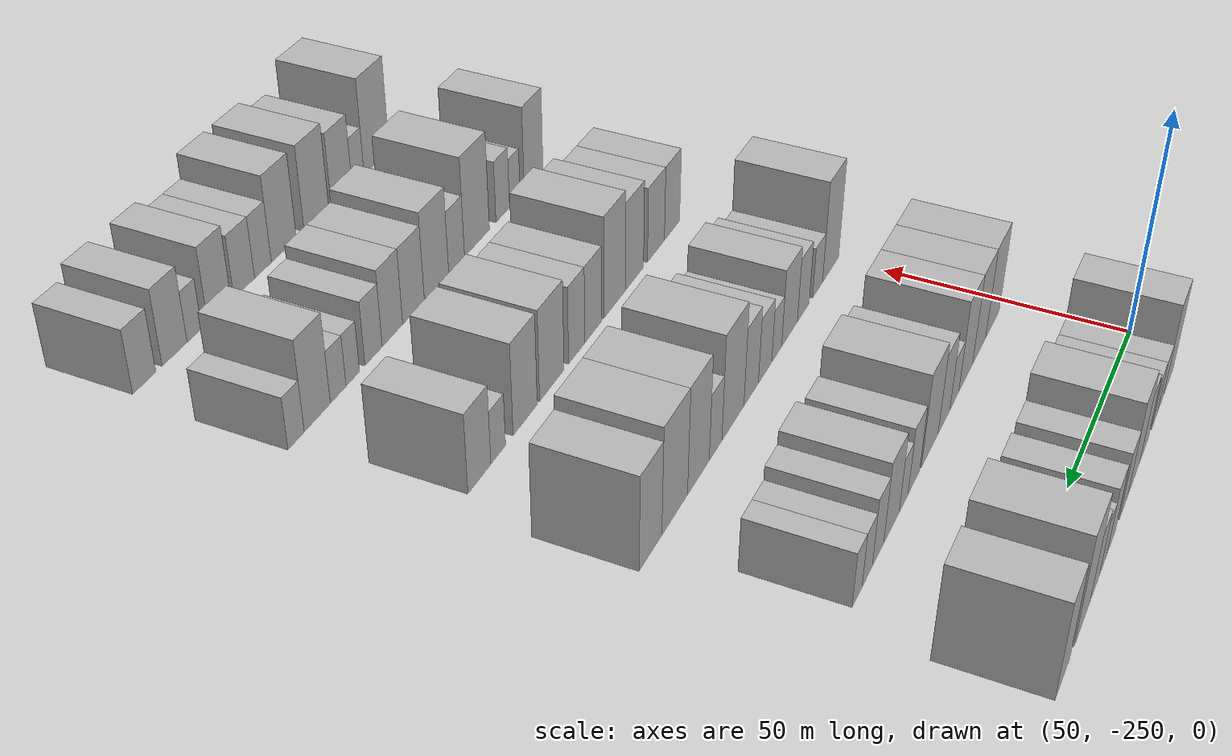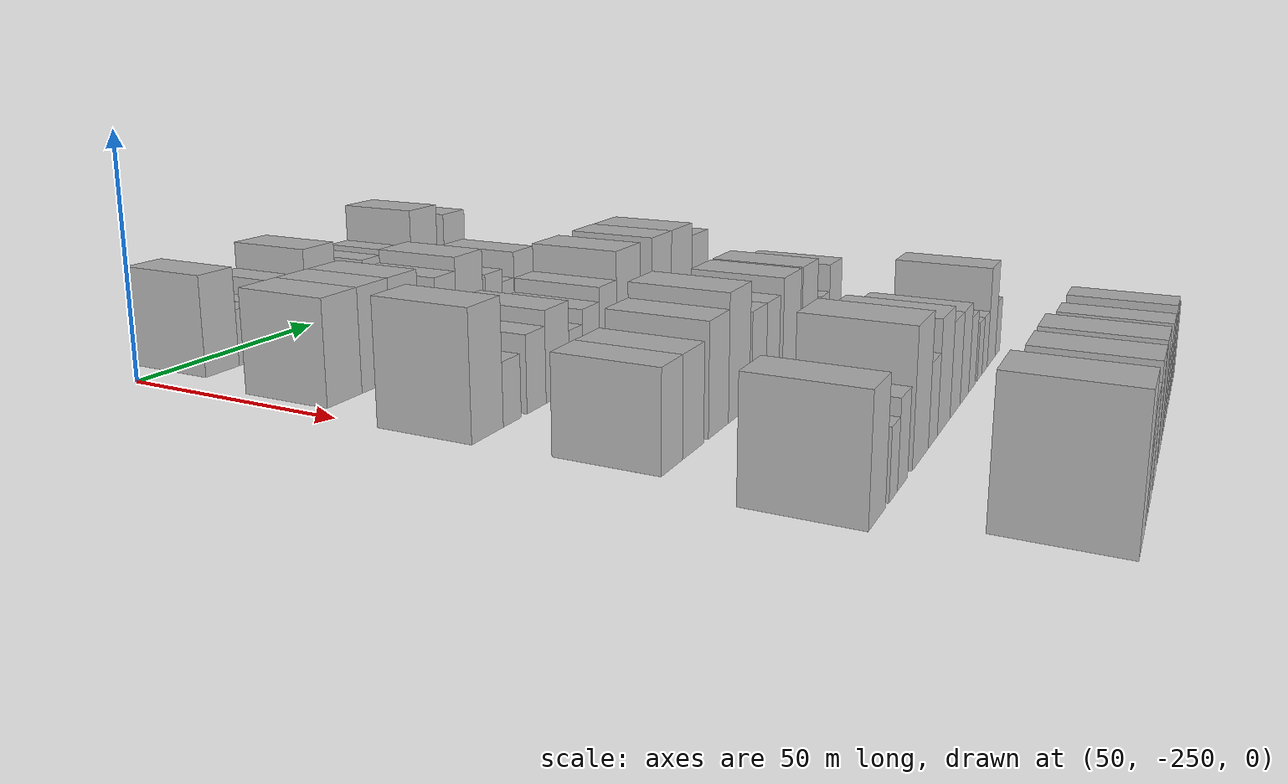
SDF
<sdf version="1.6">
 <world name="default">
  <model name="building_32">
   <static>1</static>
   <pose>50.0000 -237.3523 0 0.000000 0.000000 0.000000</pose>
   <link name="link">
    <pose>0 0 10.50 0 0 0</pose>
    <collision name="collision"><geometry><box><size>20.0000 9.0734 21.0000</size></box></geometry></collision>
    <visual name="visual">
     <cast_shadows>0</cast_shadows>
     <geometry><box><size>20.0000 9.0734 21.0000</size></box></geometry>
     <material>
      <script>
       <uri>model://HANNAS_wall/materials/scripts</uri>
       <uri>model://HANNAS_wall/materials/textures</uri>
       <name>vrc/HANNAS_wall</name>
      </script>
     </material>
    </visual>
   </link>
  </model>
  <model name="building_33">
   <static>1</static>
   <pose>50.0000 -230.0246 0 0.000000 0.000000 0.000000</pose>
   <link name="link">
    <pose>0 0 6.00 0 0 0</pose>
    <collision name="collision"><geometry><box><size>20.0000 5.5820 12.0000</size></box></geometry></collision>
    <visual name="visual">
     <cast_shadows>0</cast_shadows>
     <geometry><box><size>20.0000 5.5820 12.0000</size></box></geometry>
     <material>
      <script>
       <uri>model://HANNAS_wall/materials/scripts</uri>
       <uri>model://HANNAS_wall/materials/textures</uri>
       <name>vrc/HANNAS_wall</name>
      </script>
     </material>
    </visual>
   </link>
  </model>
  <model name="building_34">
   <static>1</static>
   <pose>50.0000 -224.6992 0 0.000000 0.000000 0.000000</pose>
   <link name="link">
    <pose>0 0 6.00 0 0 0</pose>
    <collision name="collision"><geometry><box><size>20.0000 5.0687 12.0000</size></box></geometry></collision>
    <visual name="visual">
     <cast_shadows>0</cast_shadows>
     <geometry><box><size>20.0000 5.0687 12.0000</size></box></geometry>
     <material>
      <script>
       <uri>model://HANNAS_wall/materials/scripts</uri>
       <uri>model://HANNAS_wall/materials/textures</uri>
       <name>vrc/HANNAS_wall</name>
      </script>
     </material>
    </visual>
   </link>
  </model>
  <model name="building_35">
   <static>1</static>
   <pose>50.0000 -215.6008 0 0.000000 0.000000 0.000000</pose>
   <link name="link">
    <pose>0 0 7.50 0 0 0</pose>
    <collision name="collision"><geometry><box><size>20.0000 7.1281 15.0000</size></box></geometry></collision>
    <visual name="visual">
     <cast_shadows>0</cast_shadows>
     <geometry><box><size>20.0000 7.1281 15.0000</size></box></geometry>
     <material>
      <script>
       <uri>model://HANNAS_wall/materials/scripts</uri>
       <uri>model://HANNAS_wall/materials/textures</uri>
       <name>vrc/HANNAS_wall</name>
      </script>
     </material>
    </visual>
   </link>
  </model>
  <model name="building_36">
   <static>1</static>
   <pose>50.0000 -207.0426 0 0.000000 0.000000 0.000000</pose>
   <link name="link">
    <pose>0 0 10.50 0 0 0</pose>
    <collision name="collision"><geometry><box><size>20.0000 9.9884 21.0000</size></box></geometry></collision>
    <visual name="visual">
     <cast_shadows>0</cast_shadows>
     <geometry><box><size>20.0000 9.9884 21.0000</size></box></geometry>
     <material>
      <script>
       <uri>model://HANNAS_wall/materials/scripts</uri>
       <uri>model://HANNAS_wall/materials/textures</uri>
       <name>vrc/HANNAS_wall</name>
      </script>
     </material>
    </visual>
   </link>
  </model>
  <model name="building_37">
   <static>1</static>
   <pose>50.0000 -198.7668 0 0.000000 0.000000 0.000000</pose>
   <link name="link">
    <pose>0 0 7.50 0 0 0</pose>
    <collision name="collision"><geometry><box><size>20.0000 6.5631 15.0000</size></box></geometry></collision>
    <visual name="visual">
     <cast_shadows>0</cast_shadows>
     <geometry><box><size>20.0000 6.5631 15.0000</size></box></geometry>
     <material>
      <script>
       <uri>model://HANNAS_wall/materials/scripts</uri>
       <uri>model://HANNAS_wall/materials/textures</uri>
       <name>vrc/HANNAS_wall</name>
      </script>
     </material>
    </visual>
   </link>
  </model>
  <model name="building_38">
   <static>1</static>
   <pose>50.0000 -189.1288 0 0.000000 0.000000 0.000000</pose>
   <link name="link">
    <pose>0 0 7.50 0 0 0</pose>
    <collision name="collision"><geometry><box><size>20.0000 6.7131 15.0000</size></box></geometry></collision>
    <visual name="visual">
     <cast_shadows>0</cast_shadows>
     <geometry><box><size>20.0000 6.7131 15.0000</size></box></geometry>
     <material>
      <script>
       <uri>model://HANNAS_wall/materials/scripts</uri>
       <uri>model://HANNAS_wall/materials/textures</uri>
       <name>vrc/HANNAS_wall</name>
      </script>
     </material>
    </visual>
   </link>
  </model>
  <model name="building_39">
   <static>1</static>
   <pose>50.0000 -183.0793 0 0.000000 0.000000 0.000000</pose>
   <link name="link">
    <pose>0 0 6.00 0 0 0</pose>
    <collision name="collision"><geometry><box><size>20.0000 5.3858 12.0000</size></box></geometry></collision>
    <visual name="visual">
     <cast_shadows>0</cast_shadows>
     <geometry><box><size>20.0000 5.3858 12.0000</size></box></geometry>
     <material>
      <script>
       <uri>model://HANNAS_wall/materials/scripts</uri>
       <uri>model://HANNAS_wall/materials/textures</uri>
       <name>vrc/HANNAS_wall</name>
      </script>
     </material>
    </visual>
   </link>
  </model>
  <model name="building_40">
   <static>1</static>
   <pose>50.0000 -177.0962 0 0.000000 0.000000 0.000000</pose>
   <link name="link">
    <pose>0 0 7.50 0 0 0</pose>
    <collision name="collision"><geometry><box><size>20.0000 6.5806 15.0000</size></box></geometry></collision>
    <visual name="visual">
     <cast_shadows>0</cast_shadows>
     <geometry><box><size>20.0000 6.5806 15.0000</size></box></geometry>
     <material>
      <script>
       <uri>model://HANNAS_wall/materials/scripts</uri>
       <uri>model://HANNAS_wall/materials/textures</uri>
       <name>vrc/HANNAS_wall</name>
      </script>
     </material>
    </visual>
   </link>
  </model>
  <model name="building_41">
   <static>1</static>
   <pose>50.0000 -168.3609 0 0.000000 0.000000 0.000000</pose>
   <link name="link">
    <pose>0 0 12.00 0 0 0</pose>
    <collision name="collision"><geometry><box><size>20.0000 10.8899 24.0000</size></box></geometry></collision>
    <visual name="visual">
     <cast_shadows>0</cast_shadows>
     <geometry><box><size>20.0000 10.8899 24.0000</size></box></geometry>
     <material>
      <script>
       <uri>model://HANNAS_wall/materials/scripts</uri>
       <uri>model://HANNAS_wall/materials/textures</uri>
       <name>vrc/HANNAS_wall</name>
      </script>
     </material>
    </visual>
   </link>
  </model>
  <model name="building_42">
   <static>1</static>
   <pose>50.0000 -155.2237 0 0.000000 0.000000 0.000000</pose>
   <link name="link">
    <pose>0 0 10.50 0 0 0</pose>
    <collision name="collision"><geometry><box><size>20.0000 9.3845 21.0000</size></box></geometry></collision>
    <visual name="visual">
     <cast_shadows>0</cast_shadows>
     <geometry><box><size>20.0000 9.3845 21.0000</size></box></geometry>
     <material>
      <script>
       <uri>model://HANNAS_wall/materials/scripts</uri>
       <uri>model://HANNAS_wall/materials/textures</uri>
       <name>vrc/HANNAS_wall</name>
      </script>
     </material>
    </visual>
   </link>
  </model>
  <model name="building_154">
   <static>1</static>
   <pose>85.0000 -241.3068 0 0.000000 0.000000 0.000000</pose>
   <link name="link">
    <pose>0 0 10.50 0 0 0</pose>
    <collision name="collision"><geometry><box><size>20.0000 9.9175 21.0000</size></box></geometry></collision>
    <visual name="visual">
     <cast_shadows>0</cast_shadows>
     <geometry><box><size>20.0000 9.9175 21.0000</size></box></geometry>
     <material>
      <script>
       <uri>model://HANNAS_wall/materials/scripts</uri>
       <uri>model://HANNAS_wall/materials/textures</uri>
       <name>vrc/HANNAS_wall</name>
      </script>
     </material>
    </visual>
   </link>
  </model>
  <model name="building_155">
   <static>1</static>
   <pose>85.0000 -231.7588 0 0.000000 0.000000 0.000000</pose>
   <link name="link">
    <pose>0 0 10.50 0 0 0</pose>
    <collision name="collision"><geometry><box><size>20.0000 9.1785 21.0000</size></box></geometry></collision>
    <visual name="visual">
     <cast_shadows>0</cast_shadows>
     <geometry><box><size>20.0000 9.1785 21.0000</size></box></geometry>
     <material>
      <script>
       <uri>model://HANNAS_wall/materials/scripts</uri>
       <uri>model://HANNAS_wall/materials/textures</uri>
       <name>vrc/HANNAS_wall</name>
      </script>
     </material>
    </visual>
   </link>
  </model>
  <model name="building_156">
   <static>1</static>
   <pose>85.0000 -222.5315 0 0.000000 0.000000 0.000000</pose>
   <link name="link">
    <pose>0 0 10.50 0 0 0</pose>
    <collision name="collision"><geometry><box><size>20.0000 9.2760 21.0000</size></box></geometry></collision>
    <visual name="visual">
     <cast_shadows>0</cast_shadows>
     <geometry><box><size>20.0000 9.2760 21.0000</size></box></geometry>
     <material>
      <script>
       <uri>model://HANNAS_wall/materials/scripts</uri>
       <uri>model://HANNAS_wall/materials/textures</uri>
       <name>vrc/HANNAS_wall</name>
      </script>
     </material>
    </visual>
   </link>
  </model>
  <model name="building_157">
   <static>1</static>
   <pose>85.0000 -214.9713 0 0.000000 0.000000 0.000000</pose>
   <link name="link">
    <pose>0 0 6.00 0 0 0</pose>
    <collision name="collision"><geometry><box><size>20.0000 5.8444 12.0000</size></box></geometry></collision>
    <visual name="visual">
     <cast_shadows>0</cast_shadows>
     <geometry><box><size>20.0000 5.8444 12.0000</size></box></geometry>
     <material>
      <script>
       <uri>model://HANNAS_wall/materials/scripts</uri>
       <uri>model://HANNAS_wall/materials/textures</uri>
       <name>vrc/HANNAS_wall</name>
      </script>
     </material>
    </visual>
   </link>
  </model>
  <model name="building_158">
   <static>1</static>
   <pose>85.0000 -208.3191 0 0.000000 0.000000 0.000000</pose>
   <link name="link">
    <pose>0 0 9.00 0 0 0</pose>
    <collision name="collision"><geometry><box><size>20.0000 7.4600 18.0000</size></box></geometry></collision>
    <visual name="visual">
     <cast_shadows>0</cast_shadows>
     <geometry><box><size>20.0000 7.4600 18.0000</size></box></geometry>
     <material>
      <script>
       <uri>model://HANNAS_wall/materials/scripts</uri>
       <uri>model://HANNAS_wall/materials/textures</uri>
       <name>vrc/HANNAS_wall</name>
      </script>
     </material>
    </visual>
   </link>
  </model>
  <model name="building_159">
   <static>1</static>
   <pose>85.0000 -199.4707 0 0.000000 0.000000 0.000000</pose>
   <link name="link">
    <pose>0 0 10.50 0 0 0</pose>
    <collision name="collision"><geometry><box><size>20.0000 10.2369 21.0000</size></box></geometry></collision>
    <visual name="visual">
     <cast_shadows>0</cast_shadows>
     <geometry><box><size>20.0000 10.2369 21.0000</size></box></geometry>
     <material>
      <script>
       <uri>model://HANNAS_wall/materials/scripts</uri>
       <uri>model://HANNAS_wall/materials/textures</uri>
       <name>vrc/HANNAS_wall</name>
      </script>
     </material>
    </visual>
   </link>
  </model>
  <model name="building_160">
   <static>1</static>
   <pose>85.0000 -189.9321 0 0.000000 0.000000 0.000000</pose>
   <link name="link">
    <pose>0 0 7.50 0 0 0</pose>
    <collision name="collision"><geometry><box><size>20.0000 6.8403 15.0000</size></box></geometry></collision>
    <visual name="visual">
     <cast_shadows>0</cast_shadows>
     <geometry><box><size>20.0000 6.8403 15.0000</size></box></geometry>
     <material>
      <script>
       <uri>model://HANNAS_wall/materials/scripts</uri>
       <uri>model://HANNAS_wall/materials/textures</uri>
       <name>vrc/HANNAS_wall</name>
      </script>
     </material>
    </visual>
   </link>
  </model>
  <model name="building_161">
   <static>1</static>
   <pose>85.0000 -184.0098 0 0.000000 0.000000 0.000000</pose>
   <link name="link">
    <pose>0 0 6.00 0 0 0</pose>
    <collision name="collision"><geometry><box><size>20.0000 5.0044 12.0000</size></box></geometry></collision>
    <visual name="visual">
     <cast_shadows>0</cast_shadows>
     <geometry><box><size>20.0000 5.0044 12.0000</size></box></geometry>
     <material>
      <script>
       <uri>model://HANNAS_wall/materials/scripts</uri>
       <uri>model://HANNAS_wall/materials/textures</uri>
       <name>vrc/HANNAS_wall</name>
      </script>
     </material>
    </visual>
   </link>
  </model>
  <model name="building_162">
   <static>1</static>
   <pose>85.0000 -177.2108 0 0.000000 0.000000 0.000000</pose>
   <link name="link">
    <pose>0 0 9.00 0 0 0</pose>
    <collision name="collision"><geometry><box><size>20.0000 8.5937 18.0000</size></box></geometry></collision>
    <visual name="visual">
     <cast_shadows>0</cast_shadows>
     <geometry><box><size>20.0000 8.5937 18.0000</size></box></geometry>
     <material>
      <script>
       <uri>model://HANNAS_wall/materials/scripts</uri>
       <uri>model://HANNAS_wall/materials/textures</uri>
       <name>vrc/HANNAS_wall</name>
      </script>
     </material>
    </visual>
   </link>
  </model>
  <model name="building_163">
   <static>1</static>
   <pose>85.0000 -169.8658 0 0.000000 0.000000 0.000000</pose>
   <link name="link">
    <pose>0 0 7.50 0 0 0</pose>
    <collision name="collision"><geometry><box><size>20.0000 6.0963 15.0000</size></box></geometry></collision>
    <visual name="visual">
     <cast_shadows>0</cast_shadows>
     <geometry><box><size>20.0000 6.0963 15.0000</size></box></geometry>
     <material>
      <script>
       <uri>model://HANNAS_wall/materials/scripts</uri>
       <uri>model://HANNAS_wall/materials/textures</uri>
       <name>vrc/HANNAS_wall</name>
      </script>
     </material>
    </visual>
   </link>
  </model>
  <model name="building_164">
   <static>1</static>
   <pose>85.0000 -164.1455 0 0.000000 0.000000 0.000000</pose>
   <link name="link">
    <pose>0 0 6.00 0 0 0</pose>
    <collision name="collision"><geometry><box><size>20.0000 5.3443 12.0000</size></box></geometry></collision>
    <visual name="visual">
     <cast_shadows>0</cast_shadows>
     <geometry><box><size>20.0000 5.3443 12.0000</size></box></geometry>
     <material>
      <script>
       <uri>model://HANNAS_wall/materials/scripts</uri>
       <uri>model://HANNAS_wall/materials/textures</uri>
       <name>vrc/HANNAS_wall</name>
      </script>
     </material>
    </visual>
   </link>
  </model>
  <model name="building_165">
   <static>1</static>
   <pose>85.0000 -158.9627 0 0.000000 0.000000 0.000000</pose>
   <link name="link">
    <pose>0 0 6.00 0 0 0</pose>
    <collision name="collision"><geometry><box><size>20.0000 5.0213 12.0000</size></box></geometry></collision>
    <visual name="visual">
     <cast_shadows>0</cast_shadows>
     <geometry><box><size>20.0000 5.0213 12.0000</size></box></geometry>
     <material>
      <script>
       <uri>model://HANNAS_wall/materials/scripts</uri>
       <uri>model://HANNAS_wall/materials/textures</uri>
       <name>vrc/HANNAS_wall</name>
      </script>
     </material>
    </visual>
   </link>
  </model>
  <model name="building_285">
   <static>1</static>
   <pose>120.0000 -245.6313 0 0.000000 0.000000 0.000000</pose>
   <link name="link">
    <pose>0 0 12.00 0 0 0</pose>
    <collision name="collision"><geometry><box><size>20.0000 9.8191 24.0000</size></box></geometry></collision>
    <visual name="visual">
     <cast_shadows>0</cast_shadows>
     <geometry><box><size>20.0000 9.8191 24.0000</size></box></geometry>
     <material>
      <script>
       <uri>model://HANNAS_wall/materials/scripts</uri>
       <uri>model://HANNAS_wall/materials/textures</uri>
       <name>vrc/HANNAS_wall</name>
      </script>
     </material>
    </visual>
   </link>
  </model>
  <model name="building_286">
   <static>1</static>
   <pose>120.0000 -237.7604 0 0.000000 0.000000 0.000000</pose>
   <link name="link">
    <pose>0 0 6.00 0 0 0</pose>
    <collision name="collision"><geometry><box><size>20.0000 5.9228 12.0000</size></box></geometry></collision>
    <visual name="visual">
     <cast_shadows>0</cast_shadows>
     <geometry><box><size>20.0000 5.9228 12.0000</size></box></geometry>
     <material>
      <script>
       <uri>model://HANNAS_wall/materials/scripts</uri>
       <uri>model://HANNAS_wall/materials/textures</uri>
       <name>vrc/HANNAS_wall</name>
      </script>
     </material>
    </visual>
   </link>
  </model>
  <model name="building_287">
   <static>1</static>
   <pose>120.0000 -229.4066 0 0.000000 0.000000 0.000000</pose>
   <link name="link">
    <pose>0 0 7.50 0 0 0</pose>
    <collision name="collision"><geometry><box><size>20.0000 6.7847 15.0000</size></box></geometry></collision>
    <visual name="visual">
     <cast_shadows>0</cast_shadows>
     <geometry><box><size>20.0000 6.7847 15.0000</size></box></geometry>
     <material>
      <script>
       <uri>model://HANNAS_wall/materials/scripts</uri>
       <uri>model://HANNAS_wall/materials/textures</uri>
       <name>vrc/HANNAS_wall</name>
      </script>
     </material>
    </visual>
   </link>
  </model>
  <model name="building_288">
   <static>1</static>
   <pose>120.0000 -221.6166 0 0.000000 0.000000 0.000000</pose>
   <link name="link">
    <pose>0 0 9.00 0 0 0</pose>
    <collision name="collision"><geometry><box><size>20.0000 8.7952 18.0000</size></box></geometry></collision>
    <visual name="visual">
     <cast_shadows>0</cast_shadows>
     <geometry><box><size>20.0000 8.7952 18.0000</size></box></geometry>
     <material>
      <script>
       <uri>model://HANNAS_wall/materials/scripts</uri>
       <uri>model://HANNAS_wall/materials/textures</uri>
       <name>vrc/HANNAS_wall</name>
      </script>
     </material>
    </visual>
   </link>
  </model>
  <model name="building_289">
   <static>1</static>
   <pose>120.0000 -214.5351 0 0.000000 0.000000 0.000000</pose>
   <link name="link">
    <pose>0 0 6.00 0 0 0</pose>
    <collision name="collision"><geometry><box><size>20.0000 5.3678 12.0000</size></box></geometry></collision>
    <visual name="visual">
     <cast_shadows>0</cast_shadows>
     <geometry><box><size>20.0000 5.3678 12.0000</size></box></geometry>
     <material>
      <script>
       <uri>model://HANNAS_wall/materials/scripts</uri>
       <uri>model://HANNAS_wall/materials/textures</uri>
       <name>vrc/HANNAS_wall</name>
      </script>
     </material>
    </visual>
   </link>
  </model>
  <model name="building_290">
   <static>1</static>
   <pose>120.0000 -208.3117 0 0.000000 0.000000 0.000000</pose>
   <link name="link">
    <pose>0 0 7.50 0 0 0</pose>
    <collision name="collision"><geometry><box><size>20.0000 7.0790 15.0000</size></box></geometry></collision>
    <visual name="visual">
     <cast_shadows>0</cast_shadows>
     <geometry><box><size>20.0000 7.0790 15.0000</size></box></geometry>
     <material>
      <script>
       <uri>model://HANNAS_wall/materials/scripts</uri>
       <uri>model://HANNAS_wall/materials/textures</uri>
       <name>vrc/HANNAS_wall</name>
      </script>
     </material>
    </visual>
   </link>
  </model>
  <model name="building_291">
   <static>1</static>
   <pose>120.0000 -201.0424 0 0.000000 0.000000 0.000000</pose>
   <link name="link">
    <pose>0 0 9.00 0 0 0</pose>
    <collision name="collision"><geometry><box><size>20.0000 7.4596 18.0000</size></box></geometry></collision>
    <visual name="visual">
     <cast_shadows>0</cast_shadows>
     <geometry><box><size>20.0000 7.4596 18.0000</size></box></geometry>
     <material>
      <script>
       <uri>model://HANNAS_wall/materials/scripts</uri>
       <uri>model://HANNAS_wall/materials/textures</uri>
       <name>vrc/HANNAS_wall</name>
      </script>
     </material>
    </visual>
   </link>
  </model>
  <model name="building_292">
   <static>1</static>
   <pose>120.0000 -191.8659 0 0.000000 0.000000 0.000000</pose>
   <link name="link">
    <pose>0 0 12.00 0 0 0</pose>
    <collision name="collision"><geometry><box><size>20.0000 10.8932 24.0000</size></box></geometry></collision>
    <visual name="visual">
     <cast_shadows>0</cast_shadows>
     <geometry><box><size>20.0000 10.8932 24.0000</size></box></geometry>
     <material>
      <script>
       <uri>model://HANNAS_wall/materials/scripts</uri>
       <uri>model://HANNAS_wall/materials/textures</uri>
       <name>vrc/HANNAS_wall</name>
      </script>
     </material>
    </visual>
   </link>
  </model>
  <model name="building_293">
   <static>1</static>
   <pose>120.0000 -183.3997 0 0.000000 0.000000 0.000000</pose>
   <link name="link">
    <pose>0 0 7.50 0 0 0</pose>
    <collision name="collision"><geometry><box><size>20.0000 6.0392 15.0000</size></box></geometry></collision>
    <visual name="visual">
     <cast_shadows>0</cast_shadows>
     <geometry><box><size>20.0000 6.0392 15.0000</size></box></geometry>
     <material>
      <script>
       <uri>model://HANNAS_wall/materials/scripts</uri>
       <uri>model://HANNAS_wall/materials/textures</uri>
       <name>vrc/HANNAS_wall</name>
      </script>
     </material>
    </visual>
   </link>
  </model>
  <model name="building_294">
   <static>1</static>
   <pose>120.0000 -175.3780 0 0.000000 0.000000 0.000000</pose>
   <link name="link">
    <pose>0 0 12.00 0 0 0</pose>
    <collision name="collision"><geometry><box><size>20.0000 10.0044 24.0000</size></box></geometry></collision>
    <visual name="visual">
     <cast_shadows>0</cast_shadows>
     <geometry><box><size>20.0000 10.0044 24.0000</size></box></geometry>
     <material>
      <script>
       <uri>model://HANNAS_wall/materials/scripts</uri>
       <uri>model://HANNAS_wall/materials/textures</uri>
       <name>vrc/HANNAS_wall</name>
      </script>
     </material>
    </visual>
   </link>
  </model>
  <model name="building_295">
   <static>1</static>
   <pose>120.0000 -164.7251 0 0.000000 0.000000 0.000000</pose>
   <link name="link">
    <pose>0 0 12.00 0 0 0</pose>
    <collision name="collision"><geometry><box><size>20.0000 11.3012 24.0000</size></box></geometry></collision>
    <visual name="visual">
     <cast_shadows>0</cast_shadows>
     <geometry><box><size>20.0000 11.3012 24.0000</size></box></geometry>
     <material>
      <script>
       <uri>model://HANNAS_wall/materials/scripts</uri>
       <uri>model://HANNAS_wall/materials/textures</uri>
       <name>vrc/HANNAS_wall</name>
      </script>
     </material>
    </visual>
   </link>
  </model>
  <model name="building_296">
   <static>1</static>
   <pose>120.0000 -154.3101 0 0.000000 0.000000 0.000000</pose>
   <link name="link">
    <pose>0 0 10.50 0 0 0</pose>
    <collision name="collision"><geometry><box><size>20.0000 9.5289 21.0000</size></box></geometry></collision>
    <visual name="visual">
     <cast_shadows>0</cast_shadows>
     <geometry><box><size>20.0000 9.5289 21.0000</size></box></geometry>
     <material>
      <script>
       <uri>model://HANNAS_wall/materials/scripts</uri>
       <uri>model://HANNAS_wall/materials/textures</uri>
       <name>vrc/HANNAS_wall</name>
      </script>
     </material>
    </visual>
   </link>
  </model>
  <model name="building_416">
   <static>1</static>
   <pose>155.0000 -245.2707 0 0.000000 0.000000 0.000000</pose>
   <link name="link">
    <pose>0 0 9.00 0 0 0</pose>
    <collision name="collision"><geometry><box><size>20.0000 8.0805 18.0000</size></box></geometry></collision>
    <visual name="visual">
     <cast_shadows>0</cast_shadows>
     <geometry><box><size>20.0000 8.0805 18.0000</size></box></geometry>
     <material>
      <script>
       <uri>model://HANNAS_wall/materials/scripts</uri>
       <uri>model://HANNAS_wall/materials/textures</uri>
       <name>vrc/HANNAS_wall</name>
      </script>
     </material>
    </visual>
   </link>
  </model>
  <model name="building_417">
   <static>1</static>
   <pose>155.0000 -236.8520 0 0.000000 0.000000 0.000000</pose>
   <link name="link">
    <pose>0 0 9.00 0 0 0</pose>
    <collision name="collision"><geometry><box><size>20.0000 8.7567 18.0000</size></box></geometry></collision>
    <visual name="visual">
     <cast_shadows>0</cast_shadows>
     <geometry><box><size>20.0000 8.7567 18.0000</size></box></geometry>
     <material>
      <script>
       <uri>model://HANNAS_wall/materials/scripts</uri>
       <uri>model://HANNAS_wall/materials/textures</uri>
       <name>vrc/HANNAS_wall</name>
      </script>
     </material>
    </visual>
   </link>
  </model>
  <model name="building_418">
   <static>1</static>
   <pose>155.0000 -225.9494 0 0.000000 0.000000 0.000000</pose>
   <link name="link">
    <pose>0 0 10.50 0 0 0</pose>
    <collision name="collision"><geometry><box><size>20.0000 9.0485 21.0000</size></box></geometry></collision>
    <visual name="visual">
     <cast_shadows>0</cast_shadows>
     <geometry><box><size>20.0000 9.0485 21.0000</size></box></geometry>
     <material>
      <script>
       <uri>model://HANNAS_wall/materials/scripts</uri>
       <uri>model://HANNAS_wall/materials/textures</uri>
       <name>vrc/HANNAS_wall</name>
      </script>
     </material>
    </visual>
   </link>
  </model>
  <model name="building_419">
   <static>1</static>
   <pose>155.0000 -216.3047 0 0.000000 0.000000 0.000000</pose>
   <link name="link">
    <pose>0 0 12.00 0 0 0</pose>
    <collision name="collision"><geometry><box><size>20.0000 10.2409 24.0000</size></box></geometry></collision>
    <visual name="visual">
     <cast_shadows>0</cast_shadows>
     <geometry><box><size>20.0000 10.2409 24.0000</size></box></geometry>
     <material>
      <script>
       <uri>model://HANNAS_wall/materials/scripts</uri>
       <uri>model://HANNAS_wall/materials/textures</uri>
       <name>vrc/HANNAS_wall</name>
      </script>
     </material>
    </visual>
   </link>
  </model>
  <model name="building_420">
   <static>1</static>
   <pose>155.0000 -206.3125 0 0.000000 0.000000 0.000000</pose>
   <link name="link">
    <pose>0 0 9.00 0 0 0</pose>
    <collision name="collision"><geometry><box><size>20.0000 7.7433 18.0000</size></box></geometry></collision>
    <visual name="visual">
     <cast_shadows>0</cast_shadows>
     <geometry><box><size>20.0000 7.7433 18.0000</size></box></geometry>
     <material>
      <script>
       <uri>model://HANNAS_wall/materials/scripts</uri>
       <uri>model://HANNAS_wall/materials/textures</uri>
       <name>vrc/HANNAS_wall</name>
      </script>
     </material>
    </visual>
   </link>
  </model>
  <model name="building_421">
   <static>1</static>
   <pose>155.0000 -198.8231 0 0.000000 0.000000 0.000000</pose>
   <link name="link">
    <pose>0 0 9.00 0 0 0</pose>
    <collision name="collision"><geometry><box><size>20.0000 7.2356 18.0000</size></box></geometry></collision>
    <visual name="visual">
     <cast_shadows>0</cast_shadows>
     <geometry><box><size>20.0000 7.2356 18.0000</size></box></geometry>
     <material>
      <script>
       <uri>model://HANNAS_wall/materials/scripts</uri>
       <uri>model://HANNAS_wall/materials/textures</uri>
       <name>vrc/HANNAS_wall</name>
      </script>
     </material>
    </visual>
   </link>
  </model>
  <model name="building_422">
   <static>1</static>
   <pose>155.0000 -187.9905 0 0.000000 0.000000 0.000000</pose>
   <link name="link">
    <pose>0 0 10.50 0 0 0</pose>
    <collision name="collision"><geometry><box><size>20.0000 10.4294 21.0000</size></box></geometry></collision>
    <visual name="visual">
     <cast_shadows>0</cast_shadows>
     <geometry><box><size>20.0000 10.4294 21.0000</size></box></geometry>
     <material>
      <script>
       <uri>model://HANNAS_wall/materials/scripts</uri>
       <uri>model://HANNAS_wall/materials/textures</uri>
       <name>vrc/HANNAS_wall</name>
      </script>
     </material>
    </visual>
   </link>
  </model>
  <model name="building_423">
   <static>1</static>
   <pose>155.0000 -176.8585 0 0.000000 0.000000 0.000000</pose>
   <link name="link">
    <pose>0 0 10.50 0 0 0</pose>
    <collision name="collision"><geometry><box><size>20.0000 9.8346 21.0000</size></box></geometry></collision>
    <visual name="visual">
     <cast_shadows>0</cast_shadows>
     <geometry><box><size>20.0000 9.8346 21.0000</size></box></geometry>
     <material>
      <script>
       <uri>model://HANNAS_wall/materials/scripts</uri>
       <uri>model://HANNAS_wall/materials/textures</uri>
       <name>vrc/HANNAS_wall</name>
      </script>
     </material>
    </visual>
   </link>
  </model>
  <model name="building_424">
   <static>1</static>
   <pose>155.0000 -166.0957 0 0.000000 0.000000 0.000000</pose>
   <link name="link">
    <pose>0 0 6.00 0 0 0</pose>
    <collision name="collision"><geometry><box><size>20.0000 5.6912 12.0000</size></box></geometry></collision>
    <visual name="visual">
     <cast_shadows>0</cast_shadows>
     <geometry><box><size>20.0000 5.6912 12.0000</size></box></geometry>
     <material>
      <script>
       <uri>model://HANNAS_wall/materials/scripts</uri>
       <uri>model://HANNAS_wall/materials/textures</uri>
       <name>vrc/HANNAS_wall</name>
      </script>
     </material>
    </visual>
   </link>
  </model>
  <model name="building_425">
   <static>1</static>
   <pose>155.0000 -158.9110 0 0.000000 0.000000 0.000000</pose>
   <link name="link">
    <pose>0 0 9.00 0 0 0</pose>
    <collision name="collision"><geometry><box><size>20.0000 8.6781 18.0000</size></box></geometry></collision>
    <visual name="visual">
     <cast_shadows>0</cast_shadows>
     <geometry><box><size>20.0000 8.6781 18.0000</size></box></geometry>
     <material>
      <script>
       <uri>model://HANNAS_wall/materials/scripts</uri>
       <uri>model://HANNAS_wall/materials/textures</uri>
       <name>vrc/HANNAS_wall</name>
      </script>
     </material>
    </visual>
   </link>
  </model>
  <model name="building_545">
   <static>1</static>
   <pose>190.0000 -250.3718 0 0.000000 0.000000 0.000000</pose>
   <link name="link">
    <pose>0 0 10.50 0 0 0</pose>
    <collision name="collision"><geometry><box><size>20.0000 9.1140 21.0000</size></box></geometry></collision>
    <visual name="visual">
     <cast_shadows>0</cast_shadows>
     <geometry><box><size>20.0000 9.1140 21.0000</size></box></geometry>
     <material>
      <script>
       <uri>model://HANNAS_wall/materials/scripts</uri>
       <uri>model://HANNAS_wall/materials/textures</uri>
       <name>vrc/HANNAS_wall</name>
      </script>
     </material>
    </visual>
   </link>
  </model>
  <model name="building_546">
   <static>1</static>
   <pose>190.0000 -241.3300 0 0.000000 0.000000 0.000000</pose>
   <link name="link">
    <pose>0 0 6.00 0 0 0</pose>
    <collision name="collision"><geometry><box><size>20.0000 4.9695 12.0000</size></box></geometry></collision>
    <visual name="visual">
     <cast_shadows>0</cast_shadows>
     <geometry><box><size>20.0000 4.9695 12.0000</size></box></geometry>
     <material>
      <script>
       <uri>model://HANNAS_wall/materials/scripts</uri>
       <uri>model://HANNAS_wall/materials/textures</uri>
       <name>vrc/HANNAS_wall</name>
      </script>
     </material>
    </visual>
   </link>
  </model>
  <model name="building_547">
   <static>1</static>
   <pose>190.0000 -235.7034 0 0.000000 0.000000 0.000000</pose>
   <link name="link">
    <pose>0 0 7.50 0 0 0</pose>
    <collision name="collision"><geometry><box><size>20.0000 6.2839 15.0000</size></box></geometry></collision>
    <visual name="visual">
     <cast_shadows>0</cast_shadows>
     <geometry><box><size>20.0000 6.2839 15.0000</size></box></geometry>
     <material>
      <script>
       <uri>model://HANNAS_wall/materials/scripts</uri>
       <uri>model://HANNAS_wall/materials/textures</uri>
       <name>vrc/HANNAS_wall</name>
      </script>
     </material>
    </visual>
   </link>
  </model>
  <model name="building_548">
   <static>1</static>
   <pose>190.0000 -224.0557 0 0.000000 0.000000 0.000000</pose>
   <link name="link">
    <pose>0 0 12.00 0 0 0</pose>
    <collision name="collision"><geometry><box><size>20.0000 11.0115 24.0000</size></box></geometry></collision>
    <visual name="visual">
     <cast_shadows>0</cast_shadows>
     <geometry><box><size>20.0000 11.0115 24.0000</size></box></geometry>
     <material>
      <script>
       <uri>model://HANNAS_wall/materials/scripts</uri>
       <uri>model://HANNAS_wall/materials/textures</uri>
       <name>vrc/HANNAS_wall</name>
      </script>
     </material>
    </visual>
   </link>
  </model>
  <model name="building_549">
   <static>1</static>
   <pose>190.0000 -215.1727 0 0.000000 0.000000 0.000000</pose>
   <link name="link">
    <pose>0 0 7.50 0 0 0</pose>
    <collision name="collision"><geometry><box><size>20.0000 6.7544 15.0000</size></box></geometry></collision>
    <visual name="visual">
     <cast_shadows>0</cast_shadows>
     <geometry><box><size>20.0000 6.7544 15.0000</size></box></geometry>
     <material>
      <script>
       <uri>model://HANNAS_wall/materials/scripts</uri>
       <uri>model://HANNAS_wall/materials/textures</uri>
       <name>vrc/HANNAS_wall</name>
      </script>
     </material>
    </visual>
   </link>
  </model>
  <model name="building_550">
   <static>1</static>
   <pose>190.0000 -206.7307 0 0.000000 0.000000 0.000000</pose>
   <link name="link">
    <pose>0 0 10.50 0 0 0</pose>
    <collision name="collision"><geometry><box><size>20.0000 10.1298 21.0000</size></box></geometry></collision>
    <visual name="visual">
     <cast_shadows>0</cast_shadows>
     <geometry><box><size>20.0000 10.1298 21.0000</size></box></geometry>
     <material>
      <script>
       <uri>model://HANNAS_wall/materials/scripts</uri>
       <uri>model://HANNAS_wall/materials/textures</uri>
       <name>vrc/HANNAS_wall</name>
      </script>
     </material>
    </visual>
   </link>
  </model>
  <model name="building_551">
   <static>1</static>
   <pose>190.0000 -197.3172 0 0.000000 0.000000 0.000000</pose>
   <link name="link">
    <pose>0 0 9.00 0 0 0</pose>
    <collision name="collision"><geometry><box><size>20.0000 8.6971 18.0000</size></box></geometry></collision>
    <visual name="visual">
     <cast_shadows>0</cast_shadows>
     <geometry><box><size>20.0000 8.6971 18.0000</size></box></geometry>
     <material>
      <script>
       <uri>model://HANNAS_wall/materials/scripts</uri>
       <uri>model://HANNAS_wall/materials/textures</uri>
       <name>vrc/HANNAS_wall</name>
      </script>
     </material>
    </visual>
   </link>
  </model>
  <model name="building_552">
   <static>1</static>
   <pose>190.0000 -189.0048 0 0.000000 0.000000 0.000000</pose>
   <link name="link">
    <pose>0 0 9.00 0 0 0</pose>
    <collision name="collision"><geometry><box><size>20.0000 7.9277 18.0000</size></box></geometry></collision>
    <visual name="visual">
     <cast_shadows>0</cast_shadows>
     <geometry><box><size>20.0000 7.9277 18.0000</size></box></geometry>
     <material>
      <script>
       <uri>model://HANNAS_wall/materials/scripts</uri>
       <uri>model://HANNAS_wall/materials/textures</uri>
       <name>vrc/HANNAS_wall</name>
      </script>
     </material>
    </visual>
   </link>
  </model>
  <model name="building_553">
   <static>1</static>
   <pose>190.0000 -181.7842 0 0.000000 0.000000 0.000000</pose>
   <link name="link">
    <pose>0 0 7.50 0 0 0</pose>
    <collision name="collision"><geometry><box><size>20.0000 6.5133 15.0000</size></box></geometry></collision>
    <visual name="visual">
     <cast_shadows>0</cast_shadows>
     <geometry><box><size>20.0000 6.5133 15.0000</size></box></geometry>
     <material>
      <script>
       <uri>model://HANNAS_wall/materials/scripts</uri>
       <uri>model://HANNAS_wall/materials/textures</uri>
       <name>vrc/HANNAS_wall</name>
      </script>
     </material>
    </visual>
   </link>
  </model>
  <model name="building_554">
   <static>1</static>
   <pose>190.0000 -174.0707 0 0.000000 0.000000 0.000000</pose>
   <link name="link">
    <pose>0 0 6.00 0 0 0</pose>
    <collision name="collision"><geometry><box><size>20.0000 4.9137 12.0000</size></box></geometry></collision>
    <visual name="visual">
     <cast_shadows>0</cast_shadows>
     <geometry><box><size>20.0000 4.9137 12.0000</size></box></geometry>
     <material>
      <script>
       <uri>model://HANNAS_wall/materials/scripts</uri>
       <uri>model://HANNAS_wall/materials/textures</uri>
       <name>vrc/HANNAS_wall</name>
      </script>
     </material>
    </visual>
   </link>
  </model>
  <model name="building_555">
   <static>1</static>
   <pose>190.0000 -168.8086 0 0.000000 0.000000 0.000000</pose>
   <link name="link">
    <pose>0 0 6.00 0 0 0</pose>
    <collision name="collision"><geometry><box><size>20.0000 5.6104 12.0000</size></box></geometry></collision>
    <visual name="visual">
     <cast_shadows>0</cast_shadows>
     <geometry><box><size>20.0000 5.6104 12.0000</size></box></geometry>
     <material>
      <script>
       <uri>model://HANNAS_wall/materials/scripts</uri>
       <uri>model://HANNAS_wall/materials/textures</uri>
       <name>vrc/HANNAS_wall</name>
      </script>
     </material>
    </visual>
   </link>
  </model>
  <model name="building_556">
   <static>1</static>
   <pose>190.0000 -161.4756 0 0.000000 0.000000 0.000000</pose>
   <link name="link">
    <pose>0 0 10.50 0 0 0</pose>
    <collision name="collision"><geometry><box><size>20.0000 9.0556 21.0000</size></box></geometry></collision>
    <visual name="visual">
     <cast_shadows>0</cast_shadows>
     <geometry><box><size>20.0000 9.0556 21.0000</size></box></geometry>
     <material>
      <script>
       <uri>model://HANNAS_wall/materials/scripts</uri>
       <uri>model://HANNAS_wall/materials/textures</uri>
       <name>vrc/HANNAS_wall</name>
      </script>
     </material>
    </visual>
   </link>
  </model>
  <model name="building_557">
   <static>1</static>
   <pose>190.0000 -154.2163 0 0.000000 0.000000 0.000000</pose>
   <link name="link">
    <pose>0 0 6.00 0 0 0</pose>
    <collision name="collision"><geometry><box><size>20.0000 5.4631 12.0000</size></box></geometry></collision>
    <visual name="visual">
     <cast_shadows>0</cast_shadows>
     <geometry><box><size>20.0000 5.4631 12.0000</size></box></geometry>
     <material>
      <script>
       <uri>model://HANNAS_wall/materials/scripts</uri>
       <uri>model://HANNAS_wall/materials/textures</uri>
       <name>vrc/HANNAS_wall</name>
      </script>
     </material>
    </visual>
   </link>
  </model>
  <model name="building_677">
   <static>1</static>
   <pose>225.0000 -242.7166 0 0.000000 0.000000 0.000000</pose>
   <link name="link">
    <pose>0 0 12.00 0 0 0</pose>
    <collision name="collision"><geometry><box><size>20.0000 10.9694 24.0000</size></box></geometry></collision>
    <visual name="visual">
     <cast_shadows>0</cast_shadows>
     <geometry><box><size>20.0000 10.9694 24.0000</size></box></geometry>
     <material>
      <script>
       <uri>model://HANNAS_wall/materials/scripts</uri>
       <uri>model://HANNAS_wall/materials/textures</uri>
       <name>vrc/HANNAS_wall</name>
      </script>
     </material>
    </visual>
   </link>
  </model>
  <model name="building_678">
   <static>1</static>
   <pose>225.0000 -234.6847 0 0.000000 0.000000 0.000000</pose>
   <link name="link">
    <pose>0 0 6.00 0 0 0</pose>
    <collision name="collision"><geometry><box><size>20.0000 5.0945 12.0000</size></box></geometry></collision>
    <visual name="visual">
     <cast_shadows>0</cast_shadows>
     <geometry><box><size>20.0000 5.0945 12.0000</size></box></geometry>
     <material>
      <script>
       <uri>model://HANNAS_wall/materials/scripts</uri>
       <uri>model://HANNAS_wall/materials/textures</uri>
       <name>vrc/HANNAS_wall</name>
      </script>
     </material>
    </visual>
   </link>
  </model>
  <model name="building_679">
   <static>1</static>
   <pose>225.0000 -227.8354 0 0.000000 0.000000 0.000000</pose>
   <link name="link">
    <pose>0 0 9.00 0 0 0</pose>
    <collision name="collision"><geometry><box><size>20.0000 8.6040 18.0000</size></box></geometry></collision>
    <visual name="visual">
     <cast_shadows>0</cast_shadows>
     <geometry><box><size>20.0000 8.6040 18.0000</size></box></geometry>
     <material>
      <script>
       <uri>model://HANNAS_wall/materials/scripts</uri>
       <uri>model://HANNAS_wall/materials/textures</uri>
       <name>vrc/HANNAS_wall</name>
      </script>
     </material>
    </visual>
   </link>
  </model>
  <model name="building_680">
   <static>1</static>
   <pose>225.0000 -217.6347 0 0.000000 0.000000 0.000000</pose>
   <link name="link">
    <pose>0 0 10.50 0 0 0</pose>
    <collision name="collision"><geometry><box><size>20.0000 9.7974 21.0000</size></box></geometry></collision>
    <visual name="visual">
     <cast_shadows>0</cast_shadows>
     <geometry><box><size>20.0000 9.7974 21.0000</size></box></geometry>
     <material>
      <script>
       <uri>model://HANNAS_wall/materials/scripts</uri>
       <uri>model://HANNAS_wall/materials/textures</uri>
       <name>vrc/HANNAS_wall</name>
      </script>
     </material>
    </visual>
   </link>
  </model>
  <model name="building_681">
   <static>1</static>
   <pose>225.0000 -204.9636 0 0.000000 0.000000 0.000000</pose>
   <link name="link">
    <pose>0 0 10.50 0 0 0</pose>
    <collision name="collision"><geometry><box><size>20.0000 9.5447 21.0000</size></box></geometry></collision>
    <visual name="visual">
     <cast_shadows>0</cast_shadows>
     <geometry><box><size>20.0000 9.5447 21.0000</size></box></geometry>
     <material>
      <script>
       <uri>model://HANNAS_wall/materials/scripts</uri>
       <uri>model://HANNAS_wall/materials/textures</uri>
       <name>vrc/HANNAS_wall</name>
      </script>
     </material>
    </visual>
   </link>
  </model>
  <model name="building_682">
   <static>1</static>
   <pose>225.0000 -197.0970 0 0.000000 0.000000 0.000000</pose>
   <link name="link">
    <pose>0 0 7.50 0 0 0</pose>
    <collision name="collision"><geometry><box><size>20.0000 6.1885 15.0000</size></box></geometry></collision>
    <visual name="visual">
     <cast_shadows>0</cast_shadows>
     <geometry><box><size>20.0000 6.1885 15.0000</size></box></geometry>
     <material>
      <script>
       <uri>model://HANNAS_wall/materials/scripts</uri>
       <uri>model://HANNAS_wall/materials/textures</uri>
       <name>vrc/HANNAS_wall</name>
      </script>
     </material>
    </visual>
   </link>
  </model>
  <model name="building_683">
   <static>1</static>
   <pose>225.0000 -190.2733 0 0.000000 0.000000 0.000000</pose>
   <link name="link">
    <pose>0 0 7.50 0 0 0</pose>
    <collision name="collision"><geometry><box><size>20.0000 7.4591 15.0000</size></box></geometry></collision>
    <visual name="visual">
     <cast_shadows>0</cast_shadows>
     <geometry><box><size>20.0000 7.4591 15.0000</size></box></geometry>
     <material>
      <script>
       <uri>model://HANNAS_wall/materials/scripts</uri>
       <uri>model://HANNAS_wall/materials/textures</uri>
       <name>vrc/HANNAS_wall</name>
      </script>
     </material>
    </visual>
   </link>
  </model>
  <model name="building_684">
   <static>1</static>
   <pose>225.0000 -181.4557 0 0.000000 0.000000 0.000000</pose>
   <link name="link">
    <pose>0 0 9.00 0 0 0</pose>
    <collision name="collision"><geometry><box><size>20.0000 8.1760 18.0000</size></box></geometry></collision>
    <visual name="visual">
     <cast_shadows>0</cast_shadows>
     <geometry><box><size>20.0000 8.1760 18.0000</size></box></geometry>
     <material>
      <script>
       <uri>model://HANNAS_wall/materials/scripts</uri>
       <uri>model://HANNAS_wall/materials/textures</uri>
       <name>vrc/HANNAS_wall</name>
      </script>
     </material>
    </visual>
   </link>
  </model>
  <model name="building_685">
   <static>1</static>
   <pose>225.0000 -172.9094 0 0.000000 0.000000 0.000000</pose>
   <link name="link">
    <pose>0 0 6.00 0 0 0</pose>
    <collision name="collision"><geometry><box><size>20.0000 4.9167 12.0000</size></box></geometry></collision>
    <visual name="visual">
     <cast_shadows>0</cast_shadows>
     <geometry><box><size>20.0000 4.9167 12.0000</size></box></geometry>
     <material>
      <script>
       <uri>model://HANNAS_wall/materials/scripts</uri>
       <uri>model://HANNAS_wall/materials/textures</uri>
       <name>vrc/HANNAS_wall</name>
      </script>
     </material>
    </visual>
   </link>
  </model>
  <model name="building_686">
   <static>1</static>
   <pose>225.0000 -166.3547 0 0.000000 0.000000 0.000000</pose>
   <link name="link">
    <pose>0 0 9.00 0 0 0</pose>
    <collision name="collision"><geometry><box><size>20.0000 8.1925 18.0000</size></box></geometry></collision>
    <visual name="visual">
     <cast_shadows>0</cast_shadows>
     <geometry><box><size>20.0000 8.1925 18.0000</size></box></geometry>
     <material>
      <script>
       <uri>model://HANNAS_wall/materials/scripts</uri>
       <uri>model://HANNAS_wall/materials/textures</uri>
       <name>vrc/HANNAS_wall</name>
      </script>
     </material>
    </visual>
   </link>
  </model>
  <model name="building_687">
   <static>1</static>
   <pose>225.0000 -156.6016 0 0.000000 0.000000 0.000000</pose>
   <link name="link">
    <pose>0 0 7.50 0 0 0</pose>
    <collision name="collision"><geometry><box><size>20.0000 7.3136 15.0000</size></box></geometry></collision>
    <visual name="visual">
     <cast_shadows>0</cast_shadows>
     <geometry><box><size>20.0000 7.3136 15.0000</size></box></geometry>
     <material>
      <script>
       <uri>model://HANNAS_wall/materials/scripts</uri>
       <uri>model://HANNAS_wall/materials/textures</uri>
       <name>vrc/HANNAS_wall</name>
      </script>
     </material>
    </visual>
   </link>
  </model>
 </world>
</sdf>
